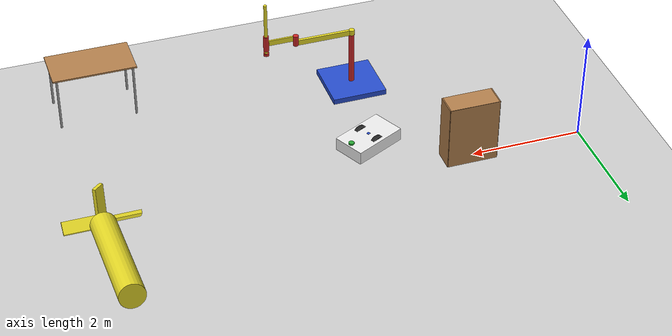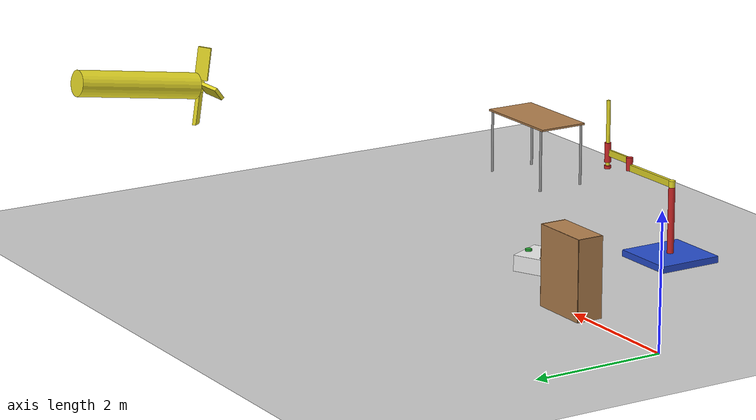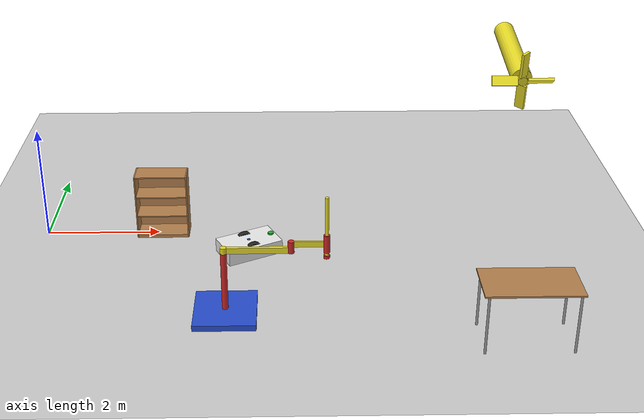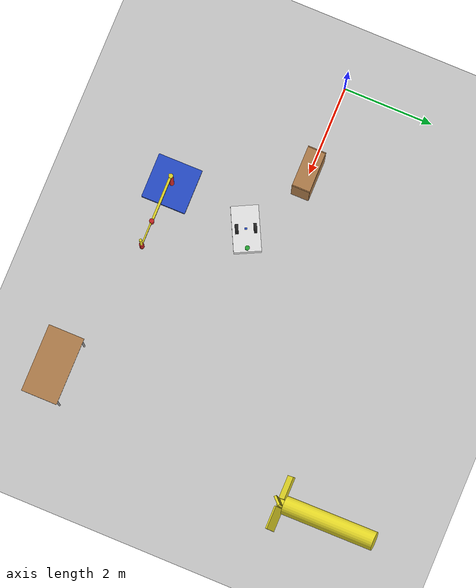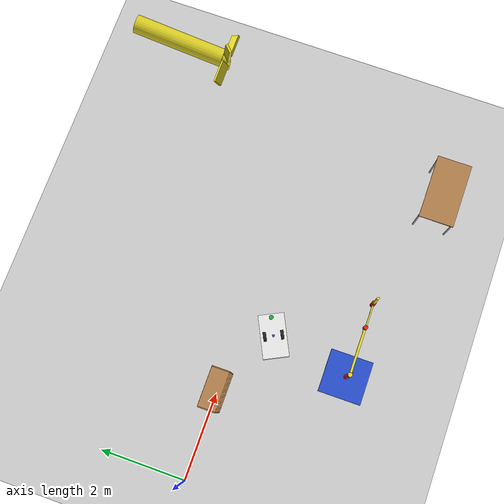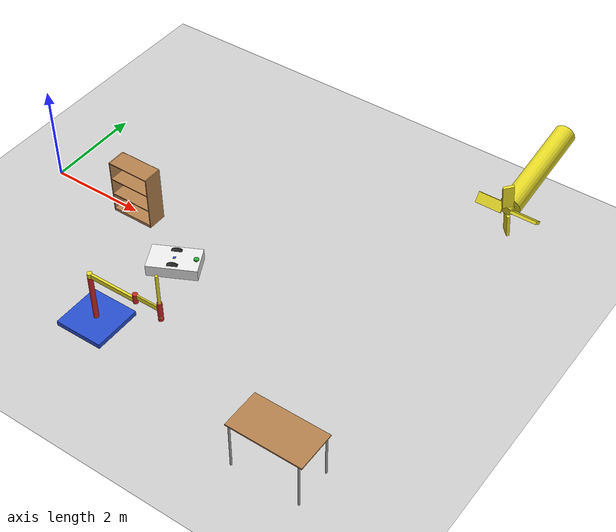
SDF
<sdf version="1.6">
 <world name="default">
  <light name="sun" type="directional">
   <pose>0 0 10 0 -0 0</pose>
   <diffuse>0.8 0.8 0.8 1</diffuse>
   <specular>0.1 0.1 0.1 1</specular>
   <attenuation>
    <range>1000</range>
    <constant>0.9</constant>
    <linear>0.01</linear>
    <quadratic>0.001</quadratic>
   </attenuation>
   <direction>-0.5 0.5 -1</direction>
  </light>
  <model name="ground_plane">
   <static>1</static>
   <link name="link">
    <collision name="collision">
     <geometry><plane><normal>0 0 1</normal><size>100 100</size></plane></geometry>
     <surface><friction><ode><mu>100</mu><mu2>50</mu2></ode></friction></surface>
    </collision>
    <visual name="visual">
     <cast_shadows>0</cast_shadows>
     <geometry><plane><normal>0 0 1</normal><size>100 100</size></plane></geometry>
     <material>
      <script><uri>file://media/materials/scripts/gazebo.material</uri><name>Gazebo/Grey</name></script>
     </material>
    </visual>
   </link>
  </model>
  <gravity>0 0 -9.8</gravity>
  <magnetic_field>6e-06 2.3e-05 -4.2e-05</magnetic_field>
  <atmosphere type="adiabatic"/>
  <physics name="default_physics" default="0" type="ode">
   <max_step_size>0.001</max_step_size>
   <real_time_factor>1</real_time_factor>
   <real_time_update_rate>1000</real_time_update_rate>
  </physics>
  <scene><ambient>0.4 0.4 0.4 1</ambient><background>0.7 0.7 0.7 1</background><shadows>1</shadows></scene>
  <spherical_coordinates>
   <surface_model>EARTH_WGS84</surface_model>
   <latitude_deg>0</latitude_deg>
   <longitude_deg>0</longitude_deg>
   <elevation>0</elevation>
   <heading_deg>0</heading_deg>
  </spherical_coordinates>
  <model name="bill">
   <link name="base_link">
    <inertial>
     <pose>-0.03636 0.099991 -0.099981 0 -0 0</pose>
     <mass>1.1001</mass>
     <inertia>
      <ixx>1.00201</ixx>
      <ixy>3.63603e-07</ixy>
      <ixz>-7.81747e-07</ixz>
      <iyy>1.17655</iyy>
      <iyz>2.1498e-06</iyz>
      <izz>1.17655</izz>
     </inertia>
    </inertial>
    <collision name="base_link_fixed_joint_lump__collision_chassis_collision">
     <geometry><box><size>1 0.6 0.24</size></box></geometry>
    </collision>
    <collision name="base_link_fixed_joint_lump__caster_back_collision_collision_1">
     <pose>-0.4 0 -0.1 0 -0 0</pose>
     <geometry><sphere><radius>0.06</radius></sphere></geometry>
    </collision>
    <collision name="base_link_fixed_joint_lump__caster_front_collision_collision_2">
     <pose>0.4 0 -0.1 0 -0 0</pose>
     <geometry><sphere><radius>0.06</radius></sphere></geometry>
    </collision>
    <collision name="base_link_fixed_joint_lump__imu_collision_3">
     <pose>0 0 0.1 0 -0 0</pose>
     <geometry><box><size>0.05 0.05 0.05</size></box></geometry>
    </collision>
    <collision name="base_link_fixed_joint_lump__rplidar_collision_4">
     <pose>0.42 0 0.1 0 -0 0</pose>
     <geometry><cylinder><length>0.1</length><radius>0.05</radius></cylinder></geometry>
    </collision>
    <visual name="base_link_fixed_joint_lump__chassis_visual">
     <geometry><box><size>1 0.6 0.24</size></box></geometry>
     <material>
      <script><name>Gazebo/White</name><uri>file://media/materials/scripts/gazebo.material</uri></script>
     </material>
    </visual>
    <visual name="base_link_fixed_joint_lump__caster_back_visual_visual_1">
     <pose>-0.4 0 -0.1 0 -0 0</pose>
     <geometry><sphere><radius>0.06</radius></sphere></geometry>
    </visual>
    <visual name="base_link_fixed_joint_lump__caster_front_visual_visual_2">
     <pose>0.4 0 -0.1 0 -0 0</pose>
     <geometry><sphere><radius>0.06</radius></sphere></geometry>
    </visual>
    <visual name="base_link_fixed_joint_lump__imu_visual_3">
     <pose>0 0 0.1 0 -0 0</pose>
     <geometry><box><size>0.05 0.05 0.05</size></box></geometry>
     <material>
      <script><name>Gazebo/Blue</name><uri>file://media/materials/scripts/gazebo.material</uri></script>
     </material>
    </visual>
    <visual name="base_link_fixed_joint_lump__rplidar_visual_4">
     <pose>0.42 0 0.1 0 -0 0</pose>
     <geometry><cylinder><length>0.1</length><radius>0.05</radius></cylinder></geometry>
     <material>
      <script><name>Gazebo/Green</name><uri>file://media/materials/scripts/gazebo.material</uri></script>
     </material>
    </visual>
    <sensor name="imu_sensor" type="imu">
     <always_on>1</always_on>
     <update_rate>100</update_rate>
     <visualize>1</visualize>
     <topic>__default_topic__</topic>
     <plugin name="imu_plugin" filename="libgazebo_ros_imu_sensor.so">
      <topicName>/imu</topicName>
      <bodyName>imu</bodyName>
      <updateRateHZ>10.0</updateRateHZ>
      <gaussianNoise>0.0</gaussianNoise>
      <xyzOffset>0 0 0</xyzOffset>
      <rpyOffset>0 0 0</rpyOffset>
      <frameName>imu</frameName>
      <robotNamespace>/</robotNamespace>
     </plugin>
     <pose>0 0 0.1 0 -0 0</pose>
    </sensor>
    <sensor name="head_hokuyo_sensor" type="ray">
     <visualize>0</visualize>
     <update_rate>40</update_rate>
     <ray>
      <scan>
       <horizontal>
        <samples>720</samples>
        <resolution>1</resolution>
        <min_angle>-1.5708</min_angle>
        <max_angle>1.5708</max_angle>
       </horizontal>
       <vertical><samples>1</samples><min_angle>0</min_angle><max_angle>0</max_angle></vertical>
      </scan>
      <range><min>0.1</min><max>50</max><resolution>0.001</resolution></range>
     </ray>
     <plugin name="gazebo_ros_head_hokuyo_controller" filename="libgazebo_ros_laser.so">
      <topicName>/scan</topicName>
      <frameName>rplidar</frameName>
      <robotNamespace>/</robotNamespace>
     </plugin>
     <pose>0.42 0 0.1 0 -0 0</pose>
    </sensor>
   </link>
   <link name="left_wheel">
    <pose>0 -0.2 0 0 -0 0</pose>
    <inertial>
     <pose>0 0 0 -0 1.5707 1.5707</pose>
     <mass>1</mass>
     <inertia>
      <ixx>0.000526667</ixx>
      <ixy>0</ixy>
      <ixz>0</ixz>
      <iyy>0.000526667</iyy>
      <iyz>0</iyz>
      <izz>0.001</izz>
     </inertia>
    </inertial>
    <collision name="left_wheel_collision_collision">
     <pose>0 0 0 3.14159 1.57079 -1.57089</pose>
     <geometry><cylinder><length>0.07</length><radius>0.162</radius></cylinder></geometry>
    </collision>
    <visual name="left_wheel_visual_visual">
     <pose>0 0 0 3.14159 1.57079 -1.57089</pose>
     <geometry><cylinder><length>0.07</length><radius>0.162</radius></cylinder></geometry>
     <material>
      <script><name>Gazebo/Black</name><uri>file://media/materials/scripts/gazebo.material</uri></script>
     </material>
    </visual>
   </link>
   <joint name="left_wheel_joint" type="revolute">
    <child>left_wheel</child>
    <parent>base_link</parent>
    <axis>
     <xyz>0 1 0</xyz>
     <limit><lower>-1e+16</lower><upper>1e+16</upper></limit>
     <dynamics><spring_reference>0</spring_reference><spring_stiffness>0</spring_stiffness></dynamics>
     <use_parent_model_frame>1</use_parent_model_frame>
    </axis>
   </joint>
   <link name="right_wheel">
    <pose>0 0.2 0 0 -0 0</pose>
    <inertial>
     <pose>0 0 0 -0 1.5707 1.5707</pose>
     <mass>1</mass>
     <inertia>
      <ixx>0.000526667</ixx>
      <ixy>0</ixy>
      <ixz>0</ixz>
      <iyy>0.000526667</iyy>
      <iyz>0</iyz>
      <izz>0.001</izz>
     </inertia>
    </inertial>
    <collision name="right_wheel_collision_collision">
     <pose>0 0 0 3.14159 1.57079 -1.57089</pose>
     <geometry><cylinder><length>0.07</length><radius>0.162</radius></cylinder></geometry>
    </collision>
    <visual name="right_wheel_visual_visual">
     <pose>0 0 0 3.14159 1.57079 -1.57089</pose>
     <geometry><cylinder><length>0.07</length><radius>0.162</radius></cylinder></geometry>
     <material>
      <script><name>Gazebo/Black</name><uri>file://media/materials/scripts/gazebo.material</uri></script>
     </material>
    </visual>
   </link>
   <joint name="right_wheel_joint" type="revolute">
    <child>right_wheel</child>
    <parent>base_link</parent>
    <axis>
     <xyz>0 1 0</xyz>
     <limit><lower>-1e+16</lower><upper>1e+16</upper></limit>
     <dynamics><spring_reference>0</spring_reference><spring_stiffness>0</spring_stiffness></dynamics>
     <use_parent_model_frame>1</use_parent_model_frame>
    </axis>
   </joint>
   <plugin name="gazebo_ros_control" filename="libgazebo_ros_control.so">
    <robotNamespace>/bill</robotNamespace>
    <robotSimType>gazebo_ros_control/DefaultRobotHWSim</robotSimType>
   </plugin>
   <static>0</static>
   <plugin name="p3d_base_controller" filename="libgazebo_ros_p3d.so">
    <alwaysOn>true</alwaysOn>
    <updateRate>50.0</updateRate>
    <bodyName>base_link</bodyName>
    <topicName>odom</topicName>
    <gaussianNoise>0.01</gaussianNoise>
    <frameName>map</frameName>
    <xyzOffsets>0 0 0</xyzOffsets>
    <rpyOffsets>0 0 0</rpyOffsets>
    <robotNamespace>/</robotNamespace>
   </plugin>
   <pose>3.64906 -0.794251 0.162004 -7e-06 -0.005011 0.461142</pose>
  </model>
  <model name="bookshelf">
   <static>1</static>
   <link name="link">
    <inertial><mass>1</mass></inertial>
    <collision name="back">
     <pose>0 0.005 0.6 0 -0 0</pose>
     <geometry><box><size>0.9 0.01 1.2</size></box></geometry>
    </collision>
    <visual name="visual1">
     <pose>0 0.005 0.6 0 -0 0</pose>
     <geometry><box><size>0.9 0.01 1.2</size></box></geometry>
     <material>
      <script><uri>file://media/materials/scripts/gazebo.material</uri><name>Gazebo/Wood</name></script>
     </material>
    </visual>
    <collision name="left_side">
     <pose>0.45 -0.195 0.6 0 -0 0</pose>
     <geometry><box><size>0.02 0.4 1.2</size></box></geometry>
    </collision>
    <visual name="visual2">
     <pose>0.45 -0.195 0.6 0 -0 0</pose>
     <geometry><box><size>0.02 0.4 1.2</size></box></geometry>
     <material>
      <script><uri>file://media/materials/scripts/gazebo.material</uri><name>Gazebo/Wood</name></script>
     </material>
    </visual>
    <collision name="right_side">
     <pose>-0.45 -0.195 0.6 0 -0 0</pose>
     <geometry><box><size>0.02 0.4 1.2</size></box></geometry>
    </collision>
    <visual name="visual3">
     <pose>-0.45 -0.195 0.6 0 -0 0</pose>
     <geometry><box><size>0.02 0.4 1.2</size></box></geometry>
     <material>
      <script><uri>file://media/materials/scripts/gazebo.material</uri><name>Gazebo/Wood</name></script>
     </material>
    </visual>
    <collision name="bottom">
     <pose>0 -0.195 0.03 0 -0 0</pose>
     <geometry><box><size>0.88 0.4 0.06</size></box></geometry>
    </collision>
    <visual name="visual4">
     <pose>0 -0.195 0.03 0 -0 0</pose>
     <geometry><box><size>0.88 0.4 0.06</size></box></geometry>
     <material>
      <script><uri>file://media/materials/scripts/gazebo.material</uri><name>Gazebo/Wood</name></script>
     </material>
    </visual>
    <collision name="top">
     <pose>0 -0.195 1.19 0 -0 0</pose>
     <geometry><box><size>0.88 0.4 0.02</size></box></geometry>
    </collision>
    <visual name="visual5">
     <pose>0 -0.195 1.19 0 -0 0</pose>
     <geometry><box><size>0.88 0.4 0.02</size></box></geometry>
     <material>
      <script><uri>file://media/materials/scripts/gazebo.material</uri><name>Gazebo/Wood</name></script>
     </material>
    </visual>
    <collision name="low_shelf">
     <pose>0 -0.195 0.43 0 -0 0</pose>
     <geometry><box><size>0.88 0.4 0.02</size></box></geometry>
    </collision>
    <visual name="visual6">
     <pose>0 -0.195 0.43 0 -0 0</pose>
     <geometry><box><size>0.88 0.4 0.02</size></box></geometry>
     <material>
      <script><uri>file://media/materials/scripts/gazebo.material</uri><name>Gazebo/Wood</name></script>
     </material>
    </visual>
    <collision name="high_shelf">
     <pose>0 -0.195 0.8 0 -0 0</pose>
     <geometry><box><size>0.88 0.4 0.02</size></box></geometry>
    </collision>
    <visual name="visual7">
     <pose>0 -0.195 0.8 0 -0 0</pose>
     <geometry><box><size>0.88 0.4 0.02</size></box></geometry>
     <material>
      <script><uri>file://media/materials/scripts/gazebo.material</uri><name>Gazebo/Wood</name></script>
     </material>
    </visual>
   </link>
   <pose>2.0905 0.186237 0 0 -0 0</pose>
  </model>
  <model name="simple_arm">
   <link name="arm_base">
    <inertial>
     <pose>0 0 0.00099 0 -0 0</pose>
     <inertia><ixx>1.11</ixx><ixy>0</ixy><ixz>0</ixz><iyy>100.11</iyy><iyz>0</iyz><izz>1.01</izz></inertia>
     <mass>101</mass>
    </inertial>
    <collision name="arm_base_geom">
     <pose>0 0 0.05 0 -0 0</pose>
     <geometry><box><size>1 1 0.1</size></box></geometry>
    </collision>
    <visual name="arm_base_geom_visual">
     <pose>0 0 0.05 0 -0 0</pose>
     <geometry><box><size>1 1 0.1</size></box></geometry>
     <material>
      <script><uri>file://media/materials/scripts/gazebo.material</uri><name>Gazebo/Blue</name></script>
     </material>
    </visual>
    <collision name="arm_base_geom_arm_trunk">
     <pose>0 0 0.6 0 -0 0</pose>
     <geometry><cylinder><radius>0.05</radius><length>1</length></cylinder></geometry>
    </collision>
    <visual name="arm_base_geom_arm_trunk_visual">
     <pose>0 0 0.6 0 -0 0</pose>
     <geometry><cylinder><radius>0.05</radius><length>1</length></cylinder></geometry>
     <material>
      <script><uri>file://media/materials/scripts/gazebo.material</uri><name>Gazebo/Red</name></script>
     </material>
    </visual>
   </link>
   <link name="arm_shoulder_pan">
    <pose>0 0 1.1 0 -0 0</pose>
    <inertial>
     <pose>0.045455 0 0 0 -0 0</pose>
     <inertia><ixx>0.011</ixx><ixy>0</ixy><ixz>0</ixz><iyy>0.0225</iyy><iyz>0</iyz><izz>0.0135</izz></inertia>
     <mass>1.1</mass>
    </inertial>
    <collision name="arm_shoulder_pan_geom">
     <pose>0 0 0.05 0 -0 0</pose>
     <geometry><cylinder><radius>0.05</radius><length>0.1</length></cylinder></geometry>
    </collision>
    <visual name="arm_shoulder_pan_geom_visual">
     <pose>0 0 0.05 0 -0 0</pose>
     <geometry><cylinder><radius>0.05</radius><length>0.1</length></cylinder></geometry>
     <material>
      <script><uri>file://media/materials/scripts/gazebo.material</uri><name>Gazebo/Yellow</name></script>
     </material>
    </visual>
    <collision name="arm_shoulder_pan_geom_arm_shoulder">
     <pose>0.55 0 0.05 0 -0 0</pose>
     <geometry><box><size>1 0.05 0.1</size></box></geometry>
    </collision>
    <visual name="arm_shoulder_pan_geom_arm_shoulder_visual">
     <pose>0.55 0 0.05 0 -0 0</pose>
     <geometry><box><size>1 0.05 0.1</size></box></geometry>
     <material>
      <script><uri>file://media/materials/scripts/gazebo.material</uri><name>Gazebo/Yellow</name></script>
     </material>
    </visual>
   </link>
   <link name="arm_elbow_pan">
    <pose>1.05 0 1.1 0 -0 0</pose>
    <inertial>
     <pose>0.0875 0 0.083333 0 -0 0</pose>
     <inertia>
      <ixx>0.031</ixx>
      <ixy>0</ixy>
      <ixz>0.005</ixz>
      <iyy>0.07275</iyy>
      <iyz>0</iyz>
      <izz>0.04475</izz>
     </inertia>
     <mass>1.2</mass>
    </inertial>
    <collision name="arm_elbow_pan_geom">
     <pose>0 0 0.1 0 -0 0</pose>
     <geometry><cylinder><radius>0.05</radius><length>0.2</length></cylinder></geometry>
    </collision>
    <visual name="arm_elbow_pan_geom_visual">
     <pose>0 0 0.1 0 -0 0</pose>
     <geometry><cylinder><radius>0.05</radius><length>0.2</length></cylinder></geometry>
     <material>
      <script><uri>file://media/materials/scripts/gazebo.material</uri><name>Gazebo/Red</name></script>
     </material>
    </visual>
    <collision name="arm_elbow_pan_geom_arm_elbow">
     <pose>0.3 0 0.15 0 -0 0</pose>
     <geometry><box><size>0.5 0.03 0.1</size></box></geometry>
    </collision>
    <visual name="arm_elbow_pan_geom_arm_elbow_visual">
     <pose>0.3 0 0.15 0 -0 0</pose>
     <geometry><box><size>0.5 0.03 0.1</size></box></geometry>
     <material>
      <script><uri>file://media/materials/scripts/gazebo.material</uri><name>Gazebo/Yellow</name></script>
     </material>
    </visual>
    <collision name="arm_elbow_pan_geom_arm_wrist">
     <pose>0.55 0 0.15 0 -0 0</pose>
     <geometry><cylinder><radius>0.05</radius><length>0.3</length></cylinder></geometry>
    </collision>
    <visual name="arm_elbow_pan_geom_arm_wrist_visual">
     <pose>0.55 0 0.15 0 -0 0</pose>
     <geometry><cylinder><radius>0.05</radius><length>0.3</length></cylinder></geometry>
     <material>
      <script><uri>file://media/materials/scripts/gazebo.material</uri><name>Gazebo/Red</name></script>
     </material>
    </visual>
   </link>
   <link name="arm_wrist_lift">
    <pose>1.6 0 1.05 0 -0 0</pose>
    <inertial>
     <inertia><ixx>0.01</ixx><ixy>0</ixy><ixz>0</ixz><iyy>0.01</iyy><iyz>0</iyz><izz>0.001</izz></inertia>
     <mass>0.1</mass>
    </inertial>
    <collision name="arm_wrist_lift_geom">
     <pose>0 0 0.5 0 -0 0</pose>
     <geometry><cylinder><radius>0.03</radius><length>1</length></cylinder></geometry>
    </collision>
    <visual name="arm_wrist_lift_geom_visual">
     <pose>0 0 0.5 0 -0 0</pose>
     <geometry><cylinder><radius>0.03</radius><length>1</length></cylinder></geometry>
     <material>
      <script><uri>file://media/materials/scripts/gazebo.material</uri><name>Gazebo/Yellow</name></script>
     </material>
    </visual>
   </link>
   <link name="arm_wrist_roll">
    <pose>1.6 0 1 0 -0 0</pose>
    <inertial>
     <inertia><ixx>0.01</ixx><ixy>0</ixy><ixz>0</ixz><iyy>0.01</iyy><iyz>0</iyz><izz>0.001</izz></inertia>
     <mass>0.1</mass>
    </inertial>
    <collision name="arm_wrist_roll_geom">
     <pose>0 0 0.025 0 -0 0</pose>
     <geometry><cylinder><radius>0.05</radius><length>0.05</length></cylinder></geometry>
    </collision>
    <visual name="arm_wrist_roll_geom_visual">
     <pose>0 0 0.025 0 -0 0</pose>
     <geometry><cylinder><radius>0.05</radius><length>0.05</length></cylinder></geometry>
     <material>
      <script><uri>file://media/materials/scripts/gazebo.material</uri><name>Gazebo/Red</name></script>
     </material>
    </visual>
   </link>
   <joint name="arm_shoulder_pan_joint" type="revolute">
    <parent>arm_base</parent>
    <child>arm_shoulder_pan</child>
    <axis>
     <dynamics>
      <damping>1</damping>
      <friction>0</friction>
      <spring_reference>0</spring_reference>
      <spring_stiffness>0</spring_stiffness>
     </dynamics>
     <xyz>0 0 1</xyz>
     <use_parent_model_frame>1</use_parent_model_frame>
     <limit><lower>-1e+16</lower><upper>1e+16</upper></limit>
    </axis>
   </joint>
   <joint name="arm_elbow_pan_joint" type="revolute">
    <parent>arm_shoulder_pan</parent>
    <child>arm_elbow_pan</child>
    <axis>
     <dynamics>
      <damping>1</damping>
      <friction>0</friction>
      <spring_reference>0</spring_reference>
      <spring_stiffness>0</spring_stiffness>
     </dynamics>
     <xyz>0 0 1</xyz>
     <use_parent_model_frame>1</use_parent_model_frame>
     <limit><lower>-1e+16</lower><upper>1e+16</upper></limit>
    </axis>
   </joint>
   <joint name="arm_wrist_lift_joint" type="prismatic">
    <parent>arm_elbow_pan</parent>
    <child>arm_wrist_lift</child>
    <axis>
     <dynamics>
      <damping>1</damping>
      <friction>0</friction>
      <spring_reference>0</spring_reference>
      <spring_stiffness>0</spring_stiffness>
     </dynamics>
     <limit><lower>-0.8</lower><upper>0.1</upper></limit>
     <xyz>0 0 1</xyz>
     <use_parent_model_frame>1</use_parent_model_frame>
    </axis>
   </joint>
   <joint name="arm_wrist_roll_joint" type="revolute">
    <parent>arm_wrist_lift</parent>
    <child>arm_wrist_roll</child>
    <axis>
     <dynamics>
      <damping>1</damping>
      <friction>0</friction>
      <spring_reference>0</spring_reference>
      <spring_stiffness>0</spring_stiffness>
     </dynamics>
     <limit><lower>-2.99999</lower><upper>2.99999</upper></limit>
     <xyz>0 0 1</xyz>
     <use_parent_model_frame>1</use_parent_model_frame>
    </axis>
   </joint>
   <pose>3.33221 -2.64127 0 0 -0 0.004224</pose>
  </model>
  <model name="submarine">
   <pose>8.85856 3.20328 2.22505 1.72374 -0 0</pose>
   <link name="body">
    <inertial>
     <mass>251.327</mass>
     <inertia><ixx>86.2891</ixx><ixy>0</ixy><ixz>0</ixz><iyy>86.2891</iyy><iyz>0</iyz><izz>5.02655</izz></inertia>
    </inertial>
    <visual name="body_visual">
     <geometry><cylinder><radius>0.2</radius><length>2</length></cylinder></geometry>
     <material>
      <script><uri>file://media/materials/scripts/gazebo.material</uri><name>Gazebo/Yellow</name></script>
     </material>
    </visual>
    <collision name="body_collision">
     <geometry><cylinder><radius>0.2</radius><length>2</length></cylinder></geometry>
    </collision>
    <visual name="spacer_visual">
     <pose>0 0 1.05855 0 -0 0</pose>
     <geometry><cylinder><radius>0.0933402</radius><length>0.127211</length></cylinder></geometry>
     <material>
      <script><uri>file://media/materials/scripts/gazebo.material</uri><name>Gazebo/Yellow</name></script>
     </material>
    </visual>
   </link>
   <link name="propeller">
    <pose>0 0 1.09 3.14159 -0 0</pose>
    <inertial>
     <mass>21.82</mass>
     <inertia>
      <ixx>0.459994</ixx>
      <ixy>0</ixy>
      <ixz>0</ixz>
      <iyy>0.459994</iyy>
      <iyz>0</iyz>
      <izz>0.909167</izz>
     </inertia>
    </inertial>
    <visual name="blade1_visual">
     <pose>0.34334 0 0 0.785398 -0 0</pose>
     <geometry><box><size>0.5 0.2 0.05455</size></box></geometry>
     <material>
      <script><uri>file://media/materials/scripts/gazebo.material</uri><name>Gazebo/Yellow</name></script>
     </material>
    </visual>
    <collision name="blade1_collision">
     <pose>0.34334 0 0 0.785398 -0 0</pose>
     <geometry><box><size>0.5 0.2 0.05455</size></box></geometry>
    </collision>
    <visual name="blade2_visual">
     <pose>0 0.34334 0 0.785398 0 1.5708</pose>
     <geometry><box><size>0.5 0.2 0.05455</size></box></geometry>
     <material>
      <script><uri>file://media/materials/scripts/gazebo.material</uri><name>Gazebo/Yellow</name></script>
     </material>
    </visual>
    <collision name="blade2_collision">
     <pose>0 0.34334 0 0.785398 0 1.5708</pose>
     <geometry><box><size>0.5 0.2 0.05455</size></box></geometry>
    </collision>
    <visual name="blade3_visual">
     <pose>-0.34334 -0 0 -0.785398 0 0</pose>
     <geometry><box><size>0.5 0.2 0.05455</size></box></geometry>
     <material>
      <script><uri>file://media/materials/scripts/gazebo.material</uri><name>Gazebo/Yellow</name></script>
     </material>
    </visual>
    <collision name="blade3_collision">
     <pose>-0.34334 -0 0 -0.785398 0 0</pose>
     <geometry><box><size>0.5 0.2 0.05455</size></box></geometry>
    </collision>
    <visual name="blade4_visual">
     <pose>-0 -0.34334 0 -0.785398 -0 1.5708</pose>
     <geometry><box><size>0.5 0.2 0.05455</size></box></geometry>
     <material>
      <script><uri>file://media/materials/scripts/gazebo.material</uri><name>Gazebo/Yellow</name></script>
     </material>
    </visual>
    <collision name="blade4_collision">
     <pose>-0 -0.34334 0 -0.785398 -0 1.5708</pose>
     <geometry><box><size>0.5 0.2 0.05455</size></box></geometry>
    </collision>
   </link>
   <joint name="spinning_joint" type="revolute">
    <parent>body</parent>
    <child>propeller</child>
    <axis>
     <xyz>0 0 1</xyz>
     <use_parent_model_frame>1</use_parent_model_frame>
     <limit><lower>-1e+12</lower><upper>1e+12</upper><effort>-1</effort><velocity>-1</velocity></limit>
     <dynamics><spring_reference>0</spring_reference><spring_stiffness>0</spring_stiffness></dynamics>
    </axis>
   </joint>
   <plugin name="submarine_propeller_1" filename="libLiftDragPlugin.so">
    <air_density>1000</air_density>
    <cla>1.2535816618911175</cla>
    <cla_stall>-1.4326647564469914</cla_stall>
    <cda>0</cda>
    <cda_stall>1.4326647564469914</cda_stall>
    <alpha_stall>1.396</alpha_stall>
    <a0>0</a0>
    <area>0.27637</area>
    <upward>0 -0.7071067811865476 -0.7071067811865475</upward>
    <forward>0 -0.7071067811865475 0.7071067811865476</forward>
    <link_name>propeller</link_name>
    <cp>0.35 0 0</cp>
   </plugin>
   <plugin name="submarine_propeller_2" filename="libLiftDragPlugin.so">
    <air_density>1000</air_density>
    <cla>1.2535816618911175</cla>
    <cla_stall>-1.4326647564469914</cla_stall>
    <cda>0</cda>
    <cda_stall>1.4326647564469914</cda_stall>
    <alpha_stall>1.396</alpha_stall>
    <a0>0</a0>
    <area>0.27637</area>
    <upward>-0.7071067811865475 0 -0.7071067811865476</upward>
    <forward>-0.7071067811865476 0 0.7071067811865475</forward>
    <link_name>propeller</link_name>
    <cp>0 -0.35 0</cp>
   </plugin>
   <plugin name="submarine_propeller_3" filename="libLiftDragPlugin.so">
    <air_density>1000</air_density>
    <cla>1.2535816618911175</cla>
    <cla_stall>-1.4326647564469914</cla_stall>
    <cda>0</cda>
    <cda_stall>1.4326647564469914</cda_stall>
    <alpha_stall>1.396</alpha_stall>
    <a0>0</a0>
    <area>0.27637</area>
    <upward>0 0.7071067811865475 -0.7071067811865476</upward>
    <forward>0 -0.7071067811865476 -0.7071067811865475</forward>
    <link_name>propeller</link_name>
    <cp>-0.35 0 0</cp>
   </plugin>
   <plugin name="submarine_propeller_4" filename="libLiftDragPlugin.so">
    <air_density>1000</air_density>
    <cla>1.2535816618911175</cla>
    <cla_stall>-1.4326647564469914</cla_stall>
    <cda>0</cda>
    <cda_stall>1.4326647564469914</cda_stall>
    <alpha_stall>1.396</alpha_stall>
    <a0>0</a0>
    <area>0.27637</area>
    <upward>0.7071067811865476 0 -0.7071067811865475</upward>
    <forward>0.7071067811865475 0 0.7071067811865476</forward>
    <link_name>propeller</link_name>
    <cp>0 0.35 0</cp>
   </plugin>
   <plugin name="buoyancy" filename="libBuoyancyPlugin.so"><fluid_density>1000</fluid_density></plugin>
  </model>
  <model name="table">
   <static>1</static>
   <link name="link">
    <collision name="surface">
     <pose>0 0 1 0 -0 0</pose>
     <geometry><box><size>1.5 0.8 0.03</size></box></geometry>
     <surface><friction><ode><mu>0.6</mu><mu2>0.6</mu2></ode></friction></surface>
    </collision>
    <visual name="visual1">
     <pose>0 0 1 0 -0 0</pose>
     <geometry><box><size>1.5 0.8 0.03</size></box></geometry>
     <material>
      <script><uri>file://media/materials/scripts/gazebo.material</uri><name>Gazebo/Wood</name></script>
     </material>
    </visual>
    <collision name="front_left_leg">
     <pose>0.68 0.38 0.5 0 -0 0</pose>
     <geometry><cylinder><radius>0.02</radius><length>1</length></cylinder></geometry>
    </collision>
    <visual name="front_left_leg">
     <pose>0.68 0.38 0.5 0 -0 0</pose>
     <geometry><cylinder><radius>0.02</radius><length>1</length></cylinder></geometry>
     <material>
      <script><uri>file://media/materials/scripts/gazebo.material</uri><name>Gazebo/Grey</name></script>
     </material>
    </visual>
    <collision name="front_right_leg">
     <pose>0.68 -0.38 0.5 0 -0 0</pose>
     <geometry><cylinder><radius>0.02</radius><length>1</length></cylinder></geometry>
    </collision>
    <visual name="front_right_leg">
     <pose>0.68 -0.38 0.5 0 -0 0</pose>
     <geometry><cylinder><radius>0.02</radius><length>1</length></cylinder></geometry>
     <material>
      <script><uri>file://media/materials/scripts/gazebo.material</uri><name>Gazebo/Grey</name></script>
     </material>
    </visual>
    <collision name="back_right_leg">
     <pose>-0.68 -0.38 0.5 0 -0 0</pose>
     <geometry><cylinder><radius>0.02</radius><length>1</length></cylinder></geometry>
    </collision>
    <visual name="back_right_leg">
     <pose>-0.68 -0.38 0.5 0 -0 0</pose>
     <geometry><cylinder><radius>0.02</radius><length>1</length></cylinder></geometry>
     <material>
      <script><uri>file://media/materials/scripts/gazebo.material</uri><name>Gazebo/Grey</name></script>
     </material>
    </visual>
    <collision name="back_left_leg">
     <pose>-0.68 0.38 0.5 0 -0 0</pose>
     <geometry><cylinder><radius>0.02</radius><length>1</length></cylinder></geometry>
    </collision>
    <visual name="back_left_leg">
     <pose>-0.68 0.38 0.5 0 -0 0</pose>
     <geometry><cylinder><radius>0.02</radius><length>1</length></cylinder></geometry>
     <material>
      <script><uri>file://media/materials/scripts/gazebo.material</uri><name>Gazebo/Grey</name></script>
     </material>
    </visual>
   </link>
   <pose>7.948 -3.40303 0 0 -0 0</pose>
  </model>
 </world>
</sdf>
